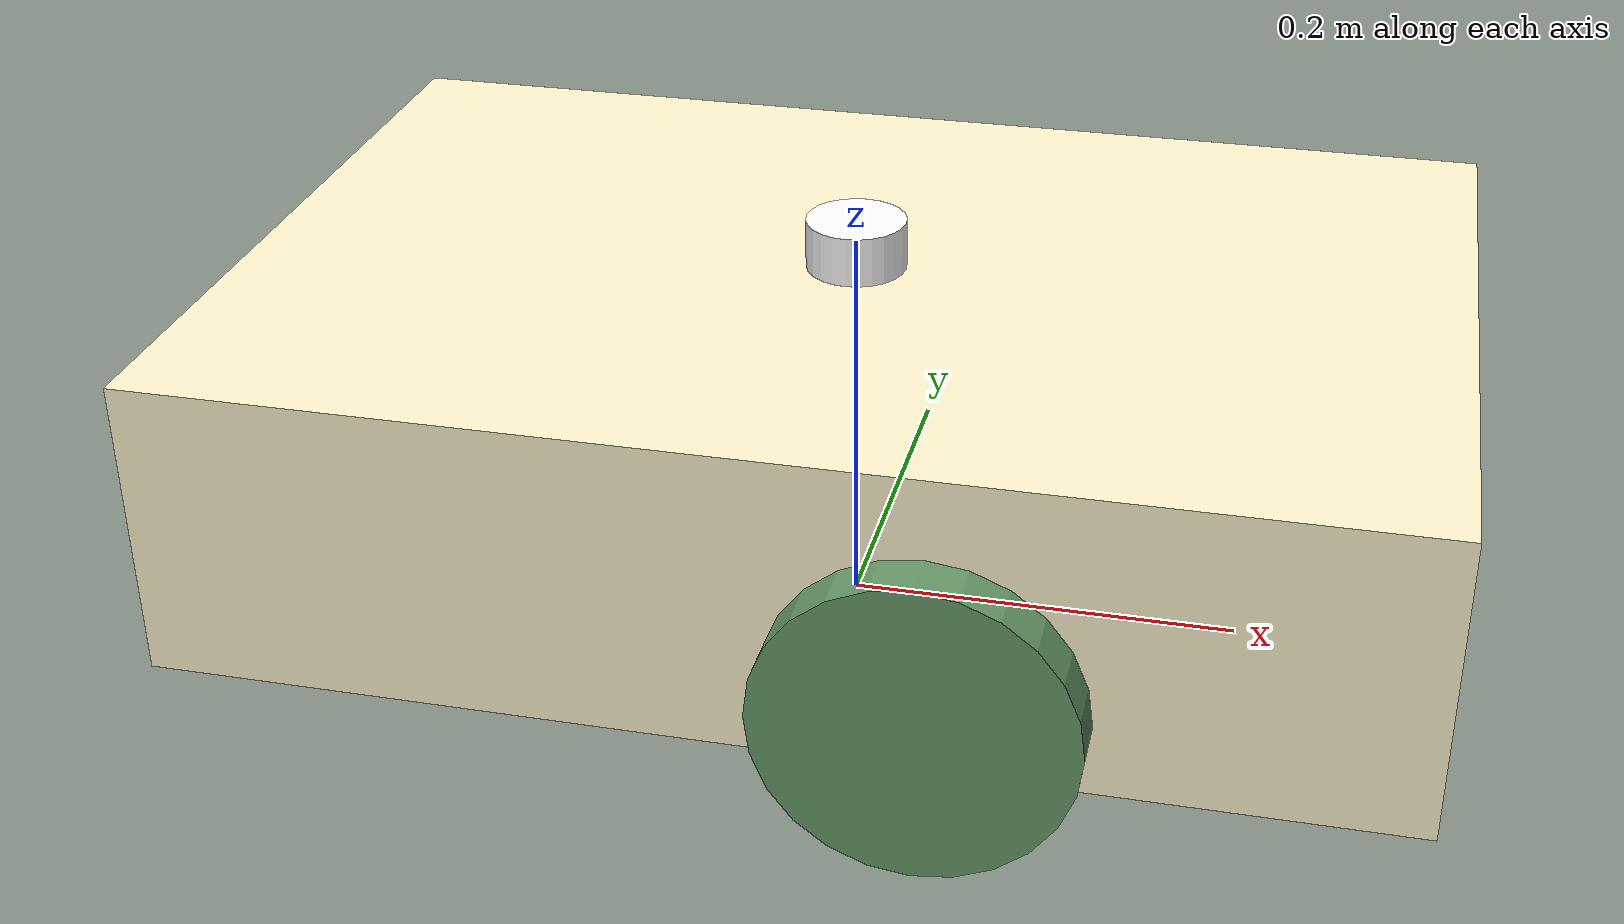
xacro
<?xml version="1.0"?>
<robot name="jms_robot" xmlns:xacro="http://ros.org/wiki/xacro">

    <!-- Include the urdf/xacro file -->
    <xacro:include filename="$(find jms_simulation_robot)/urdf/macros.xacro" />
    <xacro:include filename="$(find jms_simulation_robot)/urdf/materials.xacro" />
    <xacro:include filename="$(find jms_simulation_robot)/urdf/robot_gazebo.urdf.xacro" />

    <!-- Robot Base footprint-->
    <link name="base_footprint" />

    <joint name="base_joint" type="fixed">
        <parent link="base_footprint"/>
        <child link="base_link"/>
        <origin xyz="0.0 0.0 ${base_height/2+wheel_zoff}" rpy="0.0 0.0 0.0"/>
    </joint>

    <!-- Robot base link-->
    <link name="base_link">
        <visual>
            <origin xyz="0 0 0" rpy="0.0 0.0 0.0"/>
            <geometry>
                <box size="${base_width} ${base_length} ${base_height}"/>
            </geometry>
            <material name="FFF6CE" />
        </visual>

        <collision>
            <origin xyz="0 0 0" rpy="0.0 0.0 0.0"/>
            <geometry>
                <box size="${base_width} ${base_length} ${base_height}"/>
            </geometry>
        </collision>

        <xacro:box_inertia m="0.108" w="${base_width}" d="${base_length}" h="${base_height}" />
    </link>

    <joint name="base_to_left_wheel_joint" type="continuous">
        <parent link="base_link"/>
        <child link="left_wheel_link"/>
        <origin xyz="${-wheel_xoff} ${(base_width/2+wheel_ygap)} ${-wheel_zoff}" rpy="0 0 0"/>
        <axis xyz="0 1 0"/>
    </joint>

    <link name="left_wheel_link" >
        <visual>
            <origin xyz="0.0 0.0 0" rpy="${pi/2} 0.0 0.0"/>
            <geometry>
                <cylinder radius="${wheel_radius}" length="${wheel_width}"/>
            </geometry>
            <material name="white" />
        </visual>

        <collision>
            <origin xyz="0.0 0.0 0.0" rpy="${pi/2} 0.0 0.0"/>
            <geometry>
                <cylinder radius="${wheel_radius}" length="${wheel_width}"/>
            </geometry>
        </collision>

        <xacro:cylinder_inertia m="0.0007853" r="${wheel_radius}" h="${wheel_width}" />
    </link>

    <joint name="base_to_right_wheel_joint" type="continuous">
        <parent link="base_link"/>
        <child link="right_wheel_link"/>
        <origin xyz="${(-wheel_xoff)} ${-(base_width/2+wheel_ygap)} ${-wheel_zoff}" rpy="0 0 0"/>
        <axis xyz="0 1 0"/>
    </joint>

    <link name="right_wheel_link" >
        <visual>
            <origin xyz="0.0 0.0 0" rpy="${pi/2} 0.0 0.0"/>
            <geometry>
                <cylinder radius="${wheel_radius}" length="${wheel_width}"/>
            </geometry>
            <material name="669966" />
        </visual>

        <collision>
            <origin xyz="0.0 0.0 0.0" rpy="${pi/2} 0.0 0.0"/>
            <geometry>
                <cylinder radius="${wheel_radius}" length="${wheel_width}"/>
            </geometry>
        </collision>

        <xacro:cylinder_inertia m="0.007853" r="${wheel_radius}" h="${wheel_width}" />
    </link>

    <joint name="base_to_caster_joint" type="continuous">
        <parent link="base_link"/>
        <child link="caster_link"/>
        <origin xyz="${-base_length/2} 0 ${-wheel_zoff}" rpy="0 0 0"/>
        <axis xyz="0 1 0"/>
    </joint>

    <!-- Caster Wheel -->
    <link name="caster_link">
        <visual>
            <geometry>
                <sphere radius="${caster_radius}"/>
            </geometry>
            <material name="669966" />
        </visual>

        <collision>
            <geometry>
                <sphere radius="${caster_radius}"/>
            </geometry>
        </collision>

        <xacro:sphere_inertia m="0.000221" r="${caster_radius}"/>
    </link>

    <joint name="base_to_scan_joint" type="fixed">
        <parent link="base_link"/>
        <child link="base_scan_link"/>
        <origin xyz="0 0 ${(base_height/2 + lidar_height/4)}" rpy="0 0 0"/>
        <axis xyz="0 0 1"/>
    </joint>

    <link name="base_scan_link">
        <visual>
            <origin xyz="0.0 0.0 0.0" rpy="0 0 0"/>
            <geometry>
                <cylinder radius="${lidar_radius}" length="${lidar_radius}"/>
            </geometry>
            <material name="white" />
        </visual>

        <collision>
            <origin xyz="0 0 0" rpy="0.0 0.0 0.0"/>
            <geometry>
                <cylinder radius="${lidar_radius}" length="${lidar_height}"/>
            </geometry>
        </collision>

        <xacro:cylinder_inertia m="0.007853" r="${lidar_radius}" h="${lidar_height}" />
    </link>

    <joint name="imu_joint" type="fixed">
        <parent link="base_link"/>
        <child link="imu_link"/>
        <origin xyz="0.0 0.0 0.0" rpy="0.0 0.0 0.0"/>
    </joint>

    <link name="imu_link" />
</robot>

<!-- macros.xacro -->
<robot name="jms_robot" xmlns:xacro="http://ros.org/wiki/xacro">

    <!-- Robot base value-->
    <xacro:property name="base_width" value="0.60" />
    <xacro:property name="base_length" value="0.40" />
    <xacro:property name="base_height" value="0.15" />

    <!-- Robot wheels value-->
    <xacro:property name="wheel_radius" value="${base_height/2}" />
    <xacro:property name="wheel_width" value="${wheel_radius/3}" />

    <!-- Gap between base and wheels-->
    <xacro:property name="wheel_ygap" value="${wheel_width-0.11}" />

    <!-- Position the wheels along the x- axis and z-axis -->
    <xacro:property name="wheel_xoff" value="${-base_width/8}" />

    <xacro:property name="wheel_zoff" value="${base_height/4}" />

    <!--lidar value-->
    <xacro:property name="lidar_height" value="${base_height/3}" />
    <xacro:property name="lidar_radius" value="${lidar_height/2}" />

    <xacro:property name="caster_radius" value="${wheel_radius}" />

    <!-- Define intertial property macros  -->
    <xacro:macro name="box_inertia" params="m w h d">
        <inertial>
            <origin xyz="0 0 0" rpy="${pi/2} 0 ${pi/2}"/>
            <mass value="${m}"/>
            <inertia ixx="${(m/12) * (h*h + d*d)}" ixy="0.0" ixz="0.0" iyy="${(m/12) * (w*w + d*d)}" iyz="0.0" izz="${(m/12) * (w*w + h*h)}"/>
        </inertial>
    </xacro:macro>

    <xacro:macro name="cylinder_inertia" params="m r h">
        <inertial>
            <origin xyz="0.0 0.0 0.0" rpy="${pi/2} 0.0 ${pi/2}"/>
            <mass value="${m}"/>
            <inertia ixx="${(m/12) * (3*r*r + h*h)}" ixy = "0" ixz = "0" iyy="${(m/12) * (3*r*r + h*h)}" iyz = "0" izz="${(m/2) * (r*r)}"/>
        </inertial>
    </xacro:macro>

    <xacro:macro name="sphere_inertia" params="m r">
        <inertial>
            <mass value="${m}"/>
            <inertia ixx="${(2/5) * m * (r*r)}" ixy="0.0" ixz="0.0" iyy="${(2/5) * m * (r*r)}" iyz="0.0" izz="${(2/5) * m * (r*r)}"/>
        </inertial>
    </xacro:macro>

</robot>

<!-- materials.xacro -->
<robot name="jms_robot" xmlns:xacro="http://ros.org/wiki/xacro">

    <!-- Define color value-->
    <material name="red">
        <color rgba="1 0 0 1"/>
    </material>

    <material name="blue">
        <color rgba="0 0 1 1"/>
    </material>

    <material name="green">
        <color rgba="0 1 0 1"/>
    </material>

    <material name="white">
        <color rgba="1 1 1 1"/>
    </material>

    <material name="669966">
        <color rgba="0.4 0.5961 0.4 1"/>
    </material>

    <material name="FFF6CE">
        <color rgba="1 0.9647 0.8078 1"/>
    </material>

</robot>
